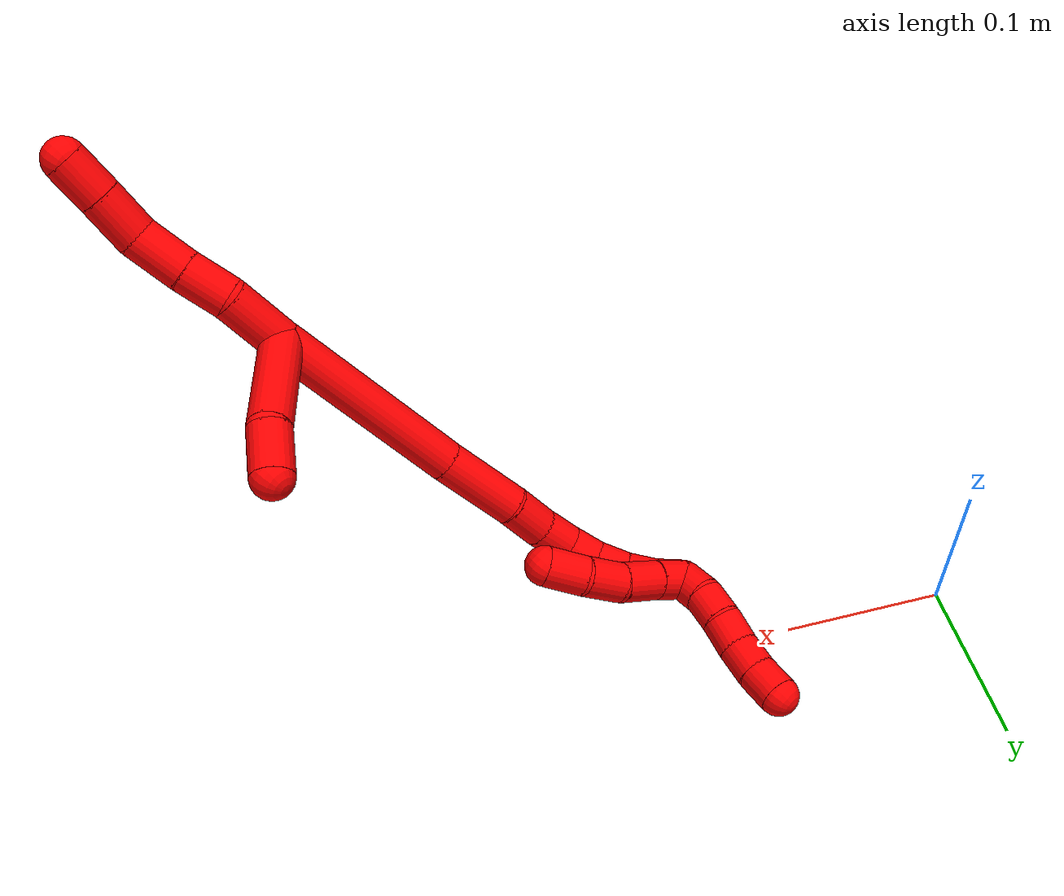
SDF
<sdf version="1.7">
 <world name="default">
  <model name="2">
   <static>0</static>
   <link name="2">
    <collision name="collision-cylinder-e_1_2_8">
     <pose>0.014309 -0.002219 0.012293 0.178586 0.853105 0.081331</pose>
     <geometry><cylinder><radius>0.0125</radius><length>0.03799</length></cylinder></geometry>
     <surface>
      <friction><ode><mu>1.16</mu><mu2>1.16</mu2><slip1>0</slip1><slip2>0</slip2></ode></friction>
      <contact><ode><kp>1e+06</kp><kd>1</kd><max_vel>0</max_vel><min_depth>0.001</min_depth></ode></contact>
     </surface>
    </collision>
    <visual name="visual-cylinder-e_1_2_8">
     <pose>0.014309 -0.002219 0.012293 0.178586 0.853105 0.081331</pose>
     <geometry><cylinder><radius>0.0125</radius><length>0.03799</length></cylinder></geometry>
     <material><ambient>1 0 0 1</ambient></material>
    </visual>
    <collision name="collision-cylinder-e_2_8_9">
     <pose>0.036021 -0.007468 0.035719 0.265768 0.570415 0.078345</pose>
     <geometry><cylinder><radius>0.0125</radius><length>0.027416</length></cylinder></geometry>
     <surface>
      <friction><ode><mu>1.16</mu><mu2>1.16</mu2><slip1>0</slip1><slip2>0</slip2></ode></friction>
      <contact><ode><kp>1e+06</kp><kd>1</kd><max_vel>0</max_vel><min_depth>0.001</min_depth></ode></contact>
     </surface>
    </collision>
    <visual name="visual-cylinder-e_2_8_9">
     <pose>0.036021 -0.007468 0.035719 0.265768 0.570415 0.078345</pose>
     <geometry><cylinder><radius>0.0125</radius><length>0.027416</length></cylinder></geometry>
     <material><ambient>1 0 0 1</ambient></material>
    </visual>
    <collision name="collision-cylinder-e_3_9_10">
     <pose>0.051816 -0.012807 0.0595 0.180475 0.578346 0.053827</pose>
     <geometry><cylinder><radius>0.0125</radius><length>0.030708</length></cylinder></geometry>
     <surface>
      <friction><ode><mu>1.16</mu><mu2>1.16</mu2><slip1>0</slip1><slip2>0</slip2></ode></friction>
      <contact><ode><kp>1e+06</kp><kd>1</kd><max_vel>0</max_vel><min_depth>0.001</min_depth></ode></contact>
     </surface>
    </collision>
    <visual name="visual-cylinder-e_3_9_10">
     <pose>0.051816 -0.012807 0.0595 0.180475 0.578346 0.053827</pose>
     <geometry><cylinder><radius>0.0125</radius><length>0.030708</length></cylinder></geometry>
     <material><ambient>1 0 0 1</ambient></material>
    </visual>
    <collision name="collision-cylinder-e_4_10_11">
     <pose>0.071013 -0.014671 0.081366 -0.048081 0.863913 -0.022168</pose>
     <geometry><cylinder><radius>0.0125</radius><length>0.028417</length></cylinder></geometry>
     <surface>
      <friction><ode><mu>1.16</mu><mu2>1.16</mu2><slip1>0</slip1><slip2>0</slip2></ode></friction>
      <contact><ode><kp>1e+06</kp><kd>1</kd><max_vel>0</max_vel><min_depth>0.001</min_depth></ode></contact>
     </surface>
    </collision>
    <visual name="visual-cylinder-e_4_10_11">
     <pose>0.071013 -0.014671 0.081366 -0.048081 0.863913 -0.022168</pose>
     <geometry><cylinder><radius>0.0125</radius><length>0.028417</length></cylinder></geometry>
     <material><ambient>1 0 0 1</ambient></material>
    </visual>
    <collision name="collision-cylinder-e_5_11_6">
     <pose>0.09126 -0.014049 0.099125 -0.020875 0.835295 -0.009264</pose>
     <geometry><cylinder><radius>0.0125</radius><length>0.025469</length></cylinder></geometry>
     <surface>
      <friction><ode><mu>1.16</mu><mu2>1.16</mu2><slip1>0</slip1><slip2>0</slip2></ode></friction>
      <contact><ode><kp>1e+06</kp><kd>1</kd><max_vel>0</max_vel><min_depth>0.001</min_depth></ode></contact>
     </surface>
    </collision>
    <visual name="visual-cylinder-e_5_11_6">
     <pose>0.09126 -0.014049 0.099125 -0.020875 0.835295 -0.009264</pose>
     <geometry><cylinder><radius>0.0125</radius><length>0.025469</length></cylinder></geometry>
     <material><ambient>1 0 0 1</ambient></material>
    </visual>
    <collision name="collision-cylinder-e_1_2_12">
     <pose>0.012817 -0.020977 -0.025379 2.45086 0.371212 0.962008</pose>
     <geometry><cylinder><radius>0.0125</radius><length>0.070665</length></cylinder></geometry>
     <surface>
      <friction><ode><mu>1.16</mu><mu2>1.16</mu2><slip1>0</slip1><slip2>0</slip2></ode></friction>
      <contact><ode><kp>1e+06</kp><kd>1</kd><max_vel>0</max_vel><min_depth>0.001</min_depth></ode></contact>
     </surface>
    </collision>
    <visual name="visual-cylinder-e_1_2_12">
     <pose>0.012817 -0.020977 -0.025379 2.45086 0.371212 0.962008</pose>
     <geometry><cylinder><radius>0.0125</radius><length>0.070665</length></cylinder></geometry>
     <material><ambient>1 0 0 1</ambient></material>
    </visual>
    <collision name="collision-cylinder-e_2_12_5">
     <pose>0.026364 -0.050895 -0.062362 2.48513 0.049855 0.146164</pose>
     <geometry><cylinder><radius>0.0125</radius><length>0.029335</length></cylinder></geometry>
     <surface>
      <friction><ode><mu>1.16</mu><mu2>1.16</mu2><slip1>0</slip1><slip2>0</slip2></ode></friction>
      <contact><ode><kp>1e+06</kp><kd>1</kd><max_vel>0</max_vel><min_depth>0.001</min_depth></ode></contact>
     </surface>
    </collision>
    <visual name="visual-cylinder-e_2_12_5">
     <pose>0.026364 -0.050895 -0.062362 2.48513 0.049855 0.146164</pose>
     <geometry><cylinder><radius>0.0125</radius><length>0.029335</length></cylinder></geometry>
     <material><ambient>1 0 0 1</ambient></material>
    </visual>
    <collision name="collision-cylinder-e_1_2_13">
     <pose>-0.043212 0.009784 -0.041524 -2.91019 -0.791817 2.59919</pose>
     <geometry><cylinder><radius>0.0125</radius><length>0.121446</length></cylinder></geometry>
     <surface>
      <friction><ode><mu>1.16</mu><mu2>1.16</mu2><slip1>0</slip1><slip2>0</slip2></ode></friction>
      <contact><ode><kp>1e+06</kp><kd>1</kd><max_vel>0</max_vel><min_depth>0.001</min_depth></ode></contact>
     </surface>
    </collision>
    <visual name="visual-cylinder-e_1_2_13">
     <pose>-0.043212 0.009784 -0.041524 -2.91019 -0.791817 2.59919</pose>
     <geometry><cylinder><radius>0.0125</radius><length>0.121446</length></cylinder></geometry>
     <material><ambient>1 0 0 1</ambient></material>
    </visual>
    <collision name="collision-cylinder-e_2_13_14">
     <pose>-0.103621 0.024446 -0.100968 -2.87584 -0.746961 2.48418</pose>
     <geometry><cylinder><radius>0.0125</radius><length>0.05062</length></cylinder></geometry>
     <surface>
      <friction><ode><mu>1.16</mu><mu2>1.16</mu2><slip1>0</slip1><slip2>0</slip2></ode></friction>
      <contact><ode><kp>1e+06</kp><kd>1</kd><max_vel>0</max_vel><min_depth>0.001</min_depth></ode></contact>
     </surface>
    </collision>
    <visual name="visual-cylinder-e_2_13_14">
     <pose>-0.103621 0.024446 -0.100968 -2.87584 -0.746961 2.48418</pose>
     <geometry><cylinder><radius>0.0125</radius><length>0.05062</length></cylinder></geometry>
     <material><ambient>1 0 0 1</ambient></material>
    </visual>
    <collision name="collision-cylinder-e_3_14_15">
     <pose>-0.130809 0.031227 -0.126494 -2.89632 -0.905445 2.64526</pose>
     <geometry><cylinder><radius>0.0125</radius><length>0.025403</length></cylinder></geometry>
     <surface>
      <friction><ode><mu>1.16</mu><mu2>1.16</mu2><slip1>0</slip1><slip2>0</slip2></ode></friction>
      <contact><ode><kp>1e+06</kp><kd>1</kd><max_vel>0</max_vel><min_depth>0.001</min_depth></ode></contact>
     </surface>
    </collision>
    <visual name="visual-cylinder-e_3_14_15">
     <pose>-0.130809 0.031227 -0.126494 -2.89632 -0.905445 2.64526</pose>
     <geometry><cylinder><radius>0.0125</radius><length>0.025403</length></cylinder></geometry>
     <material><ambient>1 0 0 1</ambient></material>
    </visual>
    <collision name="collision-cylinder-e_4_15_16">
     <pose>-0.14887 0.035545 -0.141552 -2.82832 -0.800225 2.42681</pose>
     <geometry><cylinder><radius>0.0125</radius><length>0.022492</length></cylinder></geometry>
     <surface>
      <friction><ode><mu>1.16</mu><mu2>1.16</mu2><slip1>0</slip1><slip2>0</slip2></ode></friction>
      <contact><ode><kp>1e+06</kp><kd>1</kd><max_vel>0</max_vel><min_depth>0.001</min_depth></ode></contact>
     </surface>
    </collision>
    <visual name="visual-cylinder-e_4_15_16">
     <pose>-0.14887 0.035545 -0.141552 -2.82832 -0.800225 2.42681</pose>
     <geometry><cylinder><radius>0.0125</radius><length>0.022492</length></cylinder></geometry>
     <material><ambient>1 0 0 1</ambient></material>
    </visual>
    <collision name="collision-cylinder-e_5_16_17">
     <pose>-0.161809 0.040323 -0.157432 -2.86812 -0.507712 2.16636</pose>
     <geometry><cylinder><radius>0.0125</radius><length>0.020033</length></cylinder></geometry>
     <surface>
      <friction><ode><mu>1.16</mu><mu2>1.16</mu2><slip1>0</slip1><slip2>0</slip2></ode></friction>
      <contact><ode><kp>1e+06</kp><kd>1</kd><max_vel>0</max_vel><min_depth>0.001</min_depth></ode></contact>
     </surface>
    </collision>
    <visual name="visual-cylinder-e_5_16_17">
     <pose>-0.161809 0.040323 -0.157432 -2.86812 -0.507712 2.16636</pose>
     <geometry><cylinder><radius>0.0125</radius><length>0.020033</length></cylinder></geometry>
     <material><ambient>1 0 0 1</ambient></material>
    </visual>
    <collision name="collision-cylinder-e_6_17_18">
     <pose>-0.169551 0.046415 -0.174685 -2.74186 -0.29128 1.25341</pose>
     <geometry><cylinder><radius>0.0125</radius><length>0.020003</length></cylinder></geometry>
     <surface>
      <friction><ode><mu>1.16</mu><mu2>1.16</mu2><slip1>0</slip1><slip2>0</slip2></ode></friction>
      <contact><ode><kp>1e+06</kp><kd>1</kd><max_vel>0</max_vel><min_depth>0.001</min_depth></ode></contact>
     </surface>
    </collision>
    <visual name="visual-cylinder-e_6_17_18">
     <pose>-0.169551 0.046415 -0.174685 -2.74186 -0.29128 1.25341</pose>
     <geometry><cylinder><radius>0.0125</radius><length>0.020003</length></cylinder></geometry>
     <material><ambient>1 0 0 1</ambient></material>
    </visual>
    <collision name="collision-cylinder-e_7_18_19">
     <pose>-0.176182 0.055321 -0.191197 -2.54883 -0.385256 1.1368</pose>
     <geometry><cylinder><radius>0.0125</radius><length>0.020002</length></cylinder></geometry>
     <surface>
      <friction><ode><mu>1.16</mu><mu2>1.16</mu2><slip1>0</slip1><slip2>0</slip2></ode></friction>
      <contact><ode><kp>1e+06</kp><kd>1</kd><max_vel>0</max_vel><min_depth>0.001</min_depth></ode></contact>
     </surface>
    </collision>
    <visual name="visual-cylinder-e_7_18_19">
     <pose>-0.176182 0.055321 -0.191197 -2.54883 -0.385256 1.1368</pose>
     <geometry><cylinder><radius>0.0125</radius><length>0.020002</length></cylinder></geometry>
     <material><ambient>1 0 0 1</ambient></material>
    </visual>
    <collision name="collision-cylinder-e_8_19_1">
     <pose>-0.18552 0.066858 -0.204216 -2.26864 -0.591949 1.15792</pose>
     <geometry><cylinder><radius>0.0125</radius><length>0.020001</length></cylinder></geometry>
     <surface>
      <friction><ode><mu>1.16</mu><mu2>1.16</mu2><slip1>0</slip1><slip2>0</slip2></ode></friction>
      <contact><ode><kp>1e+06</kp><kd>1</kd><max_vel>0</max_vel><min_depth>0.001</min_depth></ode></contact>
     </surface>
    </collision>
    <visual name="visual-cylinder-e_8_19_1">
     <pose>-0.18552 0.066858 -0.204216 -2.26864 -0.591949 1.15792</pose>
     <geometry><cylinder><radius>0.0125</radius><length>0.020001</length></cylinder></geometry>
     <material><ambient>1 0 0 1</ambient></material>
    </visual>
    <collision name="collision-cylinder-e_1_1_20">
     <pose>-0.183759 0.06623 -0.205016 0.99535 0.722483 0.404906</pose>
     <geometry><cylinder><radius>0.0125</radius><length>0.022203</length></cylinder></geometry>
     <surface>
      <friction><ode><mu>1.16</mu><mu2>1.16</mu2><slip1>0</slip1><slip2>0</slip2></ode></friction>
      <contact><ode><kp>1e+06</kp><kd>1</kd><max_vel>0</max_vel><min_depth>0.001</min_depth></ode></contact>
     </surface>
    </collision>
    <visual name="visual-cylinder-e_1_1_20">
     <pose>-0.183759 0.06623 -0.205016 0.99535 0.722483 0.404906</pose>
     <geometry><cylinder><radius>0.0125</radius><length>0.022203</length></cylinder></geometry>
     <material><ambient>1 0 0 1</ambient></material>
    </visual>
    <collision name="collision-cylinder-e_2_20_21">
     <pose>-0.168026 0.050398 -0.195573 1.06393 0.692513 0.41848</pose>
     <geometry><cylinder><radius>0.0125</radius><length>0.026289</length></cylinder></geometry>
     <surface>
      <friction><ode><mu>1.16</mu><mu2>1.16</mu2><slip1>0</slip1><slip2>0</slip2></ode></friction>
      <contact><ode><kp>1e+06</kp><kd>1</kd><max_vel>0</max_vel><min_depth>0.001</min_depth></ode></contact>
     </surface>
    </collision>
    <visual name="visual-cylinder-e_2_20_21">
     <pose>-0.168026 0.050398 -0.195573 1.06393 0.692513 0.41848</pose>
     <geometry><cylinder><radius>0.0125</radius><length>0.026289</length></cylinder></geometry>
     <material><ambient>1 0 0 1</ambient></material>
    </visual>
    <collision name="collision-cylinder-e_3_21_22">
     <pose>-0.151271 0.034856 -0.183574 0.757027 0.708876 0.292245</pose>
     <geometry><cylinder><radius>0.0125</radius><length>0.025694</length></cylinder></geometry>
     <surface>
      <friction><ode><mu>1.16</mu><mu2>1.16</mu2><slip1>0</slip1><slip2>0</slip2></ode></friction>
      <contact><ode><kp>1e+06</kp><kd>1</kd><max_vel>0</max_vel><min_depth>0.001</min_depth></ode></contact>
     </surface>
    </collision>
    <visual name="visual-cylinder-e_3_21_22">
     <pose>-0.151271 0.034856 -0.183574 0.757027 0.708876 0.292245</pose>
     <geometry><cylinder><radius>0.0125</radius><length>0.025694</length></cylinder></geometry>
     <material><ambient>1 0 0 1</ambient></material>
    </visual>
    <collision name="collision-cylinder-e_4_22_4">
     <pose>-0.136347 0.021853 -0.167332 0.603247 0.533204 0.169527</pose>
     <geometry><cylinder><radius>0.0125</radius><length>0.025814</length></cylinder></geometry>
     <surface>
      <friction><ode><mu>1.16</mu><mu2>1.16</mu2><slip1>0</slip1><slip2>0</slip2></ode></friction>
      <contact><ode><kp>1e+06</kp><kd>1</kd><max_vel>0</max_vel><min_depth>0.001</min_depth></ode></contact>
     </surface>
    </collision>
    <visual name="visual-cylinder-e_4_22_4">
     <pose>-0.136347 0.021853 -0.167332 0.603247 0.533204 0.169527</pose>
     <geometry><cylinder><radius>0.0125</radius><length>0.025814</length></cylinder></geometry>
     <material><ambient>1 0 0 1</ambient></material>
    </visual>
    <collision name="collision-cylinder-e_1_1_23">
     <pose>-0.188006 0.072875 -0.219052 3.10567 0.31458 2.91603</pose>
     <geometry><cylinder><radius>0.0125</radius><length>0.02</length></cylinder></geometry>
     <surface>
      <friction><ode><mu>1.16</mu><mu2>1.16</mu2><slip1>0</slip1><slip2>0</slip2></ode></friction>
      <contact><ode><kp>1e+06</kp><kd>1</kd><max_vel>0</max_vel><min_depth>0.001</min_depth></ode></contact>
     </surface>
    </collision>
    <visual name="visual-cylinder-e_1_1_23">
     <pose>-0.188006 0.072875 -0.219052 3.10567 0.31458 2.91603</pose>
     <geometry><cylinder><radius>0.0125</radius><length>0.02</length></cylinder></geometry>
     <material><ambient>1 0 0 1</ambient></material>
    </visual>
    <collision name="collision-cylinder-e_2_23_24">
     <pose>-0.183354 0.07007 -0.238121 2.88953 0.15647 1.10814</pose>
     <geometry><cylinder><radius>0.0125</radius><length>0.02</length></cylinder></geometry>
     <surface>
      <friction><ode><mu>1.16</mu><mu2>1.16</mu2><slip1>0</slip1><slip2>0</slip2></ode></friction>
      <contact><ode><kp>1e+06</kp><kd>1</kd><max_vel>0</max_vel><min_depth>0.001</min_depth></ode></contact>
     </surface>
    </collision>
    <visual name="visual-cylinder-e_2_23_24">
     <pose>-0.183354 0.07007 -0.238121 2.88953 0.15647 1.10814</pose>
     <geometry><cylinder><radius>0.0125</radius><length>0.02</length></cylinder></geometry>
     <material><ambient>1 0 0 1</ambient></material>
    </visual>
    <collision name="collision-cylinder-e_3_24_25">
     <pose>-0.181928 0.064466 -0.25718 2.82218 -0.013304 -0.082547</pose>
     <geometry><cylinder><radius>0.0125</radius><length>0.02</length></cylinder></geometry>
     <surface>
      <friction><ode><mu>1.16</mu><mu2>1.16</mu2><slip1>0</slip1><slip2>0</slip2></ode></friction>
      <contact><ode><kp>1e+06</kp><kd>1</kd><max_vel>0</max_vel><min_depth>0.001</min_depth></ode></contact>
     </surface>
    </collision>
    <visual name="visual-cylinder-e_3_24_25">
     <pose>-0.181928 0.064466 -0.25718 2.82218 -0.013304 -0.082547</pose>
     <geometry><cylinder><radius>0.0125</radius><length>0.02</length></cylinder></geometry>
     <material><ambient>1 0 0 1</ambient></material>
    </visual>
    <collision name="collision-cylinder-e_4_25_26">
     <pose>-0.180849 0.058796 -0.276271 2.88378 0.121563 0.877879</pose>
     <geometry><cylinder><radius>0.0125</radius><length>0.02</length></cylinder></geometry>
     <surface>
      <friction><ode><mu>1.16</mu><mu2>1.16</mu2><slip1>0</slip1><slip2>0</slip2></ode></friction>
      <contact><ode><kp>1e+06</kp><kd>1</kd><max_vel>0</max_vel><min_depth>0.001</min_depth></ode></contact>
     </surface>
    </collision>
    <visual name="visual-cylinder-e_4_25_26">
     <pose>-0.180849 0.058796 -0.276271 2.88378 0.121563 0.877879</pose>
     <geometry><cylinder><radius>0.0125</radius><length>0.02</length></cylinder></geometry>
     <material><ambient>1 0 0 1</ambient></material>
    </visual>
    <collision name="collision-cylinder-e_5_26_3">
     <pose>-0.177925 0.054873 -0.295623 2.99983 0.171906 1.76317</pose>
     <geometry><cylinder><radius>0.0125</radius><length>0.02</length></cylinder></geometry>
     <surface>
      <friction><ode><mu>1.16</mu><mu2>1.16</mu2><slip1>0</slip1><slip2>0</slip2></ode></friction>
      <contact><ode><kp>1e+06</kp><kd>1</kd><max_vel>0</max_vel><min_depth>0.001</min_depth></ode></contact>
     </surface>
    </collision>
    <visual name="visual-cylinder-e_5_26_3">
     <pose>-0.177925 0.054873 -0.295623 2.99983 0.171906 1.76317</pose>
     <geometry><cylinder><radius>0.0125</radius><length>0.02</length></cylinder></geometry>
     <material><ambient>1 0 0 1</ambient></material>
    </visual>
    <collision name="collision-sphere-3">
     <pose>-0.176215 0.053481 -0.305377 0 -0 0</pose>
     <geometry><sphere><radius>0.0125</radius></sphere></geometry>
     <surface>
      <friction><ode><mu>1.16</mu><mu2>1.16</mu2><slip1>0</slip1><slip2>0</slip2></ode></friction>
      <contact><ode><kp>1e+06</kp><kd>1</kd><max_vel>0</max_vel><min_depth>0.001</min_depth></ode></contact>
     </surface>
    </collision>
    <visual name="visual-sphere-3">
     <pose>-0.176215 0.053481 -0.305377 0 -0 0</pose>
     <geometry><sphere><radius>0.0125</radius></sphere></geometry>
     <material><ambient>1 0 0 1</ambient></material>
    </visual>
    <collision name="collision-sphere-26">
     <pose>-0.179636 0.056265 -0.285869 0 -0 0</pose>
     <geometry><sphere><radius>0.0125</radius></sphere></geometry>
     <surface>
      <friction><ode><mu>1.16</mu><mu2>1.16</mu2><slip1>0</slip1><slip2>0</slip2></ode></friction>
      <contact><ode><kp>1e+06</kp><kd>1</kd><max_vel>0</max_vel><min_depth>0.001</min_depth></ode></contact>
     </surface>
    </collision>
    <visual name="visual-sphere-26">
     <pose>-0.179636 0.056265 -0.285869 0 -0 0</pose>
     <geometry><sphere><radius>0.0125</radius></sphere></geometry>
     <material><ambient>1 0 0 1</ambient></material>
    </visual>
    <collision name="collision-sphere-25">
     <pose>-0.182061 0.061327 -0.266673 0 -0 0</pose>
     <geometry><sphere><radius>0.0125</radius></sphere></geometry>
     <surface>
      <friction><ode><mu>1.16</mu><mu2>1.16</mu2><slip1>0</slip1><slip2>0</slip2></ode></friction>
      <contact><ode><kp>1e+06</kp><kd>1</kd><max_vel>0</max_vel><min_depth>0.001</min_depth></ode></contact>
     </surface>
    </collision>
    <visual name="visual-sphere-25">
     <pose>-0.182061 0.061327 -0.266673 0 -0 0</pose>
     <geometry><sphere><radius>0.0125</radius></sphere></geometry>
     <material><ambient>1 0 0 1</ambient></material>
    </visual>
    <collision name="collision-sphere-24">
     <pose>-0.181795 0.067606 -0.247686 0 -0 0</pose>
     <geometry><sphere><radius>0.0125</radius></sphere></geometry>
     <surface>
      <friction><ode><mu>1.16</mu><mu2>1.16</mu2><slip1>0</slip1><slip2>0</slip2></ode></friction>
      <contact><ode><kp>1e+06</kp><kd>1</kd><max_vel>0</max_vel><min_depth>0.001</min_depth></ode></contact>
     </surface>
    </collision>
    <visual name="visual-sphere-24">
     <pose>-0.181795 0.067606 -0.247686 0 -0 0</pose>
     <geometry><sphere><radius>0.0125</radius></sphere></geometry>
     <material><ambient>1 0 0 1</ambient></material>
    </visual>
    <collision name="collision-sphere-23">
     <pose>-0.184912 0.072533 -0.228555 0 -0 0</pose>
     <geometry><sphere><radius>0.0125</radius></sphere></geometry>
     <surface>
      <friction><ode><mu>1.16</mu><mu2>1.16</mu2><slip1>0</slip1><slip2>0</slip2></ode></friction>
      <contact><ode><kp>1e+06</kp><kd>1</kd><max_vel>0</max_vel><min_depth>0.001</min_depth></ode></contact>
     </surface>
    </collision>
    <visual name="visual-sphere-23">
     <pose>-0.184912 0.072533 -0.228555 0 -0 0</pose>
     <geometry><sphere><radius>0.0125</radius></sphere></geometry>
     <material><ambient>1 0 0 1</ambient></material>
    </visual>
    <collision name="collision-sphere-4">
     <pose>-0.129786 0.015547 -0.158178 0 -0 0</pose>
     <geometry><sphere><radius>0.0125</radius></sphere></geometry>
     <surface>
      <friction><ode><mu>1.16</mu><mu2>1.16</mu2><slip1>0</slip1><slip2>0</slip2></ode></friction>
      <contact><ode><kp>1e+06</kp><kd>1</kd><max_vel>0</max_vel><min_depth>0.001</min_depth></ode></contact>
     </surface>
    </collision>
    <visual name="visual-sphere-4">
     <pose>-0.129786 0.015547 -0.158178 0 -0 0</pose>
     <geometry><sphere><radius>0.0125</radius></sphere></geometry>
     <material><ambient>1 0 0 1</ambient></material>
    </visual>
    <collision name="collision-sphere-22">
     <pose>-0.142907 0.028159 -0.176485 0 -0 0</pose>
     <geometry><sphere><radius>0.0125</radius></sphere></geometry>
     <surface>
      <friction><ode><mu>1.16</mu><mu2>1.16</mu2><slip1>0</slip1><slip2>0</slip2></ode></friction>
      <contact><ode><kp>1e+06</kp><kd>1</kd><max_vel>0</max_vel><min_depth>0.001</min_depth></ode></contact>
     </surface>
    </collision>
    <visual name="visual-sphere-22">
     <pose>-0.142907 0.028159 -0.176485 0 -0 0</pose>
     <geometry><sphere><radius>0.0125</radius></sphere></geometry>
     <material><ambient>1 0 0 1</ambient></material>
    </visual>
    <collision name="collision-sphere-21">
     <pose>-0.159634 0.041554 -0.190662 0 -0 0</pose>
     <geometry><sphere><radius>0.0125</radius></sphere></geometry>
     <surface>
      <friction><ode><mu>1.16</mu><mu2>1.16</mu2><slip1>0</slip1><slip2>0</slip2></ode></friction>
      <contact><ode><kp>1e+06</kp><kd>1</kd><max_vel>0</max_vel><min_depth>0.001</min_depth></ode></contact>
     </surface>
    </collision>
    <visual name="visual-sphere-21">
     <pose>-0.159634 0.041554 -0.190662 0 -0 0</pose>
     <geometry><sphere><radius>0.0125</radius></sphere></geometry>
     <material><ambient>1 0 0 1</ambient></material>
    </visual>
    <collision name="collision-sphere-20">
     <pose>-0.176419 0.059243 -0.200484 0 -0 0</pose>
     <geometry><sphere><radius>0.0125</radius></sphere></geometry>
     <surface>
      <friction><ode><mu>1.16</mu><mu2>1.16</mu2><slip1>0</slip1><slip2>0</slip2></ode></friction>
      <contact><ode><kp>1e+06</kp><kd>1</kd><max_vel>0</max_vel><min_depth>0.001</min_depth></ode></contact>
     </surface>
    </collision>
    <visual name="visual-sphere-20">
     <pose>-0.176419 0.059243 -0.200484 0 -0 0</pose>
     <geometry><sphere><radius>0.0125</radius></sphere></geometry>
     <material><ambient>1 0 0 1</ambient></material>
    </visual>
    <collision name="collision-sphere-6">
     <pose>0.100702 -0.013871 0.107668 0 -0 0</pose>
     <geometry><sphere><radius>0.0125</radius></sphere></geometry>
     <surface>
      <friction><ode><mu>1.16</mu><mu2>1.16</mu2><slip1>0</slip1><slip2>0</slip2></ode></friction>
      <contact><ode><kp>1e+06</kp><kd>1</kd><max_vel>0</max_vel><min_depth>0.001</min_depth></ode></contact>
     </surface>
    </collision>
    <visual name="visual-sphere-6">
     <pose>0.100702 -0.013871 0.107668 0 -0 0</pose>
     <geometry><sphere><radius>0.0125</radius></sphere></geometry>
     <material><ambient>1 0 0 1</ambient></material>
    </visual>
    <collision name="collision-sphere-11">
     <pose>0.081817 -0.014227 0.090583 0 -0 0</pose>
     <geometry><sphere><radius>0.0125</radius></sphere></geometry>
     <surface>
      <friction><ode><mu>1.16</mu><mu2>1.16</mu2><slip1>0</slip1><slip2>0</slip2></ode></friction>
      <contact><ode><kp>1e+06</kp><kd>1</kd><max_vel>0</max_vel><min_depth>0.001</min_depth></ode></contact>
     </surface>
    </collision>
    <visual name="visual-sphere-11">
     <pose>0.081817 -0.014227 0.090583 0 -0 0</pose>
     <geometry><sphere><radius>0.0125</radius></sphere></geometry>
     <material><ambient>1 0 0 1</ambient></material>
    </visual>
    <collision name="collision-sphere-10">
     <pose>0.060209 -0.015114 0.072148 0 -0 0</pose>
     <geometry><sphere><radius>0.0125</radius></sphere></geometry>
     <surface>
      <friction><ode><mu>1.16</mu><mu2>1.16</mu2><slip1>0</slip1><slip2>0</slip2></ode></friction>
      <contact><ode><kp>1e+06</kp><kd>1</kd><max_vel>0</max_vel><min_depth>0.001</min_depth></ode></contact>
     </surface>
    </collision>
    <visual name="visual-sphere-10">
     <pose>0.060209 -0.015114 0.072148 0 -0 0</pose>
     <geometry><sphere><radius>0.0125</radius></sphere></geometry>
     <material><ambient>1 0 0 1</ambient></material>
    </visual>
    <collision name="collision-sphere-9">
     <pose>0.043423 -0.010499 0.046852 0 -0 0</pose>
     <geometry><sphere><radius>0.0125</radius></sphere></geometry>
     <surface>
      <friction><ode><mu>1.16</mu><mu2>1.16</mu2><slip1>0</slip1><slip2>0</slip2></ode></friction>
      <contact><ode><kp>1e+06</kp><kd>1</kd><max_vel>0</max_vel><min_depth>0.001</min_depth></ode></contact>
     </surface>
    </collision>
    <visual name="visual-sphere-9">
     <pose>0.043423 -0.010499 0.046852 0 -0 0</pose>
     <geometry><sphere><radius>0.0125</radius></sphere></geometry>
     <material><ambient>1 0 0 1</ambient></material>
    </visual>
    <collision name="collision-sphere-2">
     <geometry><sphere><radius>0.0125</radius></sphere></geometry>
     <surface>
      <friction><ode><mu>1.16</mu><mu2>1.16</mu2><slip1>0</slip1><slip2>0</slip2></ode></friction>
      <contact><ode><kp>1e+06</kp><kd>1</kd><max_vel>0</max_vel><min_depth>0.001</min_depth></ode></contact>
     </surface>
    </collision>
    <visual name="visual-sphere-2">
     <geometry><sphere><radius>0.0125</radius></sphere></geometry>
     <material><ambient>1 0 0 1</ambient></material>
    </visual>
    <collision name="collision-sphere-19">
     <pose>-0.17994 0.060499 -0.198883 0 -0 0</pose>
     <geometry><sphere><radius>0.0125</radius></sphere></geometry>
     <surface>
      <friction><ode><mu>1.16</mu><mu2>1.16</mu2><slip1>0</slip1><slip2>0</slip2></ode></friction>
      <contact><ode><kp>1e+06</kp><kd>1</kd><max_vel>0</max_vel><min_depth>0.001</min_depth></ode></contact>
     </surface>
    </collision>
    <visual name="visual-sphere-19">
     <pose>-0.17994 0.060499 -0.198883 0 -0 0</pose>
     <geometry><sphere><radius>0.0125</radius></sphere></geometry>
     <material><ambient>1 0 0 1</ambient></material>
    </visual>
    <collision name="collision-sphere-8">
     <pose>0.028619 -0.004438 0.024587 0 -0 0</pose>
     <geometry><sphere><radius>0.0125</radius></sphere></geometry>
     <surface>
      <friction><ode><mu>1.16</mu><mu2>1.16</mu2><slip1>0</slip1><slip2>0</slip2></ode></friction>
      <contact><ode><kp>1e+06</kp><kd>1</kd><max_vel>0</max_vel><min_depth>0.001</min_depth></ode></contact>
     </surface>
    </collision>
    <visual name="visual-sphere-8">
     <pose>0.028619 -0.004438 0.024587 0 -0 0</pose>
     <geometry><sphere><radius>0.0125</radius></sphere></geometry>
     <material><ambient>1 0 0 1</ambient></material>
    </visual>
    <collision name="collision-sphere-12">
     <pose>0.025633 -0.041954 -0.050757 0 -0 0</pose>
     <geometry><sphere><radius>0.0125</radius></sphere></geometry>
     <surface>
      <friction><ode><mu>1.16</mu><mu2>1.16</mu2><slip1>0</slip1><slip2>0</slip2></ode></friction>
      <contact><ode><kp>1e+06</kp><kd>1</kd><max_vel>0</max_vel><min_depth>0.001</min_depth></ode></contact>
     </surface>
    </collision>
    <visual name="visual-sphere-12">
     <pose>0.025633 -0.041954 -0.050757 0 -0 0</pose>
     <geometry><sphere><radius>0.0125</radius></sphere></geometry>
     <material><ambient>1 0 0 1</ambient></material>
    </visual>
    <collision name="collision-sphere-5">
     <pose>0.027095 -0.059836 -0.073966 0 -0 0</pose>
     <geometry><sphere><radius>0.0125</radius></sphere></geometry>
     <surface>
      <friction><ode><mu>1.16</mu><mu2>1.16</mu2><slip1>0</slip1><slip2>0</slip2></ode></friction>
      <contact><ode><kp>1e+06</kp><kd>1</kd><max_vel>0</max_vel><min_depth>0.001</min_depth></ode></contact>
     </surface>
    </collision>
    <visual name="visual-sphere-5">
     <pose>0.027095 -0.059836 -0.073966 0 -0 0</pose>
     <geometry><sphere><radius>0.0125</radius></sphere></geometry>
     <material><ambient>1 0 0 1</ambient></material>
    </visual>
    <collision name="collision-sphere-13">
     <pose>-0.086425 0.019568 -0.083048 0 -0 0</pose>
     <geometry><sphere><radius>0.0125</radius></sphere></geometry>
     <surface>
      <friction><ode><mu>1.16</mu><mu2>1.16</mu2><slip1>0</slip1><slip2>0</slip2></ode></friction>
      <contact><ode><kp>1e+06</kp><kd>1</kd><max_vel>0</max_vel><min_depth>0.001</min_depth></ode></contact>
     </surface>
    </collision>
    <visual name="visual-sphere-13">
     <pose>-0.086425 0.019568 -0.083048 0 -0 0</pose>
     <geometry><sphere><radius>0.0125</radius></sphere></geometry>
     <material><ambient>1 0 0 1</ambient></material>
    </visual>
    <collision name="collision-sphere-14">
     <pose>-0.120817 0.029323 -0.118887 0 -0 0</pose>
     <geometry><sphere><radius>0.0125</radius></sphere></geometry>
     <surface>
      <friction><ode><mu>1.16</mu><mu2>1.16</mu2><slip1>0</slip1><slip2>0</slip2></ode></friction>
      <contact><ode><kp>1e+06</kp><kd>1</kd><max_vel>0</max_vel><min_depth>0.001</min_depth></ode></contact>
     </surface>
    </collision>
    <visual name="visual-sphere-14">
     <pose>-0.120817 0.029323 -0.118887 0 -0 0</pose>
     <geometry><sphere><radius>0.0125</radius></sphere></geometry>
     <material><ambient>1 0 0 1</ambient></material>
    </visual>
    <collision name="collision-sphere-15">
     <pose>-0.140801 0.033131 -0.1341 0 -0 0</pose>
     <geometry><sphere><radius>0.0125</radius></sphere></geometry>
     <surface>
      <friction><ode><mu>1.16</mu><mu2>1.16</mu2><slip1>0</slip1><slip2>0</slip2></ode></friction>
      <contact><ode><kp>1e+06</kp><kd>1</kd><max_vel>0</max_vel><min_depth>0.001</min_depth></ode></contact>
     </surface>
    </collision>
    <visual name="visual-sphere-15">
     <pose>-0.140801 0.033131 -0.1341 0 -0 0</pose>
     <geometry><sphere><radius>0.0125</radius></sphere></geometry>
     <material><ambient>1 0 0 1</ambient></material>
    </visual>
    <collision name="collision-sphere-16">
     <pose>-0.156939 0.037959 -0.149004 0 -0 0</pose>
     <geometry><sphere><radius>0.0125</radius></sphere></geometry>
     <surface>
      <friction><ode><mu>1.16</mu><mu2>1.16</mu2><slip1>0</slip1><slip2>0</slip2></ode></friction>
      <contact><ode><kp>1e+06</kp><kd>1</kd><max_vel>0</max_vel><min_depth>0.001</min_depth></ode></contact>
     </surface>
    </collision>
    <visual name="visual-sphere-16">
     <pose>-0.156939 0.037959 -0.149004 0 -0 0</pose>
     <geometry><sphere><radius>0.0125</radius></sphere></geometry>
     <material><ambient>1 0 0 1</ambient></material>
    </visual>
    <collision name="collision-sphere-17">
     <pose>-0.166679 0.042687 -0.16586 0 -0 0</pose>
     <geometry><sphere><radius>0.0125</radius></sphere></geometry>
     <surface>
      <friction><ode><mu>1.16</mu><mu2>1.16</mu2><slip1>0</slip1><slip2>0</slip2></ode></friction>
      <contact><ode><kp>1e+06</kp><kd>1</kd><max_vel>0</max_vel><min_depth>0.001</min_depth></ode></contact>
     </surface>
    </collision>
    <visual name="visual-sphere-17">
     <pose>-0.166679 0.042687 -0.16586 0 -0 0</pose>
     <geometry><sphere><radius>0.0125</radius></sphere></geometry>
     <material><ambient>1 0 0 1</ambient></material>
    </visual>
    <collision name="collision-sphere-18">
     <pose>-0.172424 0.050144 -0.18351 0 -0 0</pose>
     <geometry><sphere><radius>0.0125</radius></sphere></geometry>
     <surface>
      <friction><ode><mu>1.16</mu><mu2>1.16</mu2><slip1>0</slip1><slip2>0</slip2></ode></friction>
      <contact><ode><kp>1e+06</kp><kd>1</kd><max_vel>0</max_vel><min_depth>0.001</min_depth></ode></contact>
     </surface>
    </collision>
    <visual name="visual-sphere-18">
     <pose>-0.172424 0.050144 -0.18351 0 -0 0</pose>
     <geometry><sphere><radius>0.0125</radius></sphere></geometry>
     <material><ambient>1 0 0 1</ambient></material>
    </visual>
    <collision name="collision-sphere-1">
     <pose>-0.1911 0.073216 -0.209549 0 -0 0</pose>
     <geometry><sphere><radius>0.0125</radius></sphere></geometry>
     <surface>
      <friction><ode><mu>1.16</mu><mu2>1.16</mu2><slip1>0</slip1><slip2>0</slip2></ode></friction>
      <contact><ode><kp>1e+06</kp><kd>1</kd><max_vel>0</max_vel><min_depth>0.001</min_depth></ode></contact>
     </surface>
    </collision>
    <visual name="visual-sphere-1">
     <pose>-0.1911 0.073216 -0.209549 0 -0 0</pose>
     <geometry><sphere><radius>0.0125</radius></sphere></geometry>
     <material><ambient>1 0 0 1</ambient></material>
    </visual>
    <inertial>
     <pose>-0.074711 0.019257 -0.094767 0 -0 0</pose>
     <mass>0.75</mass>
     <inertia><ixx>4.1e-05</ixx><ixy>0</ixy><ixz>0</ixz><iyy>0.000264</iyy><iyz>0</iyz><izz>7.5e-05</izz></inertia>
    </inertial>
   </link>
   <pose>0.369549 -0.150426 0.18212 1.36598 -1.2267 0.723079</pose>
  </model>
 </world>
</sdf>
